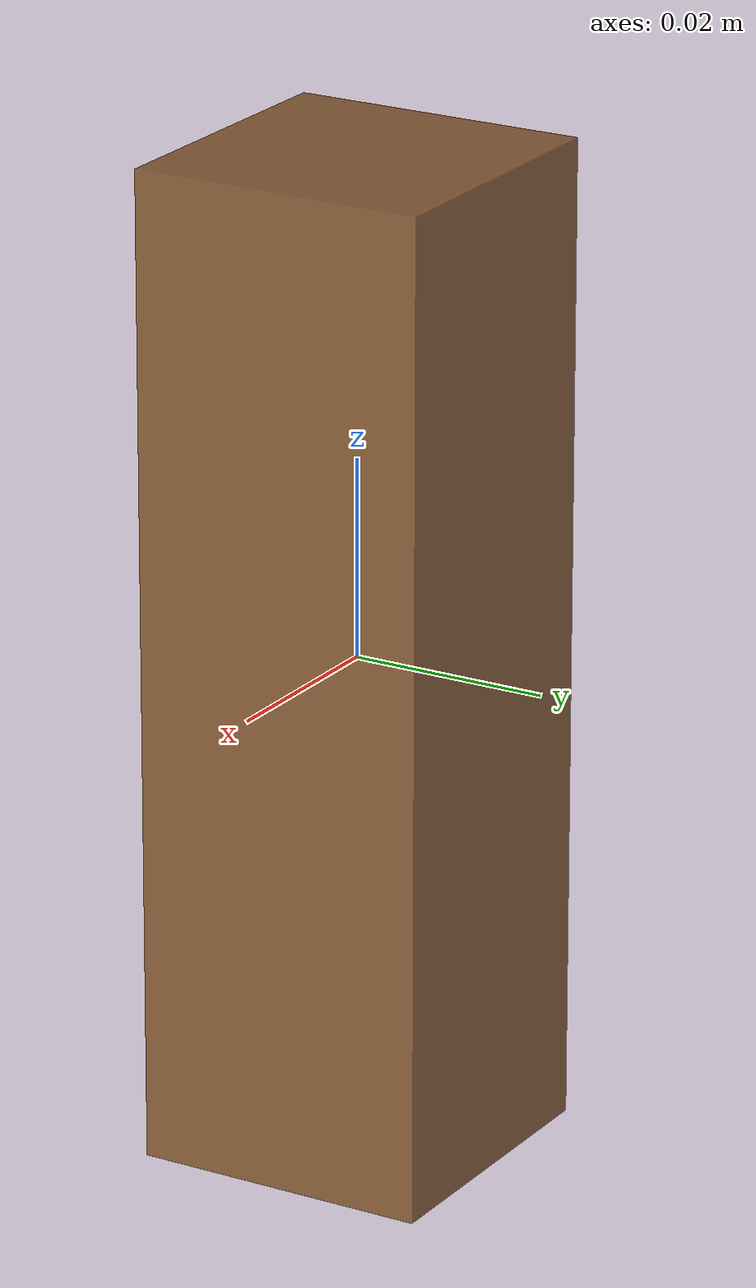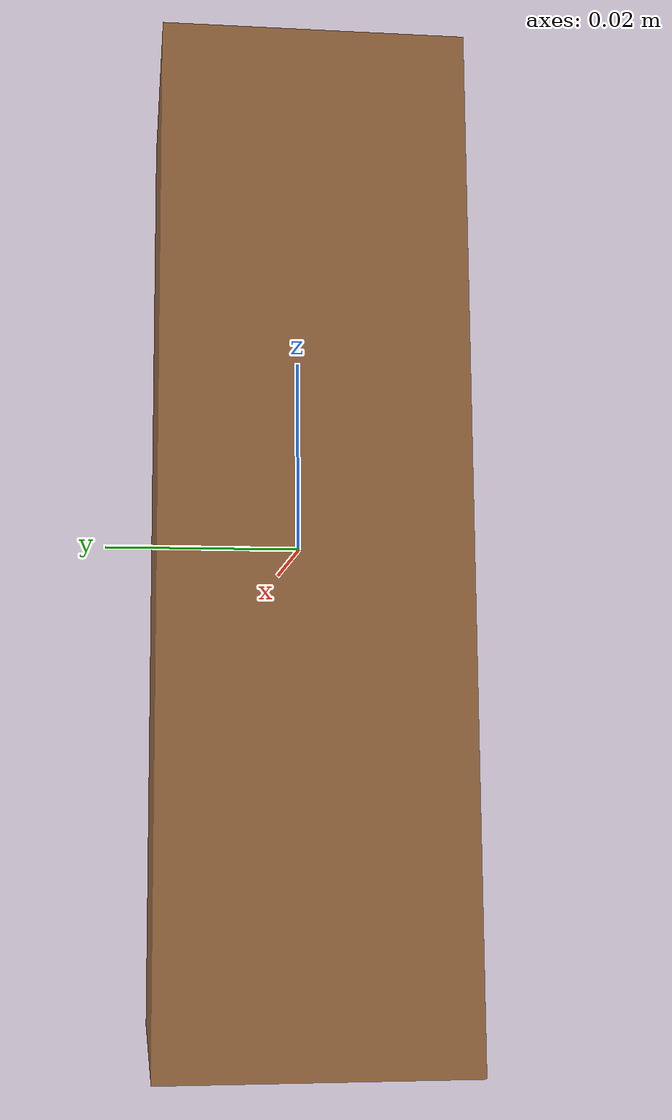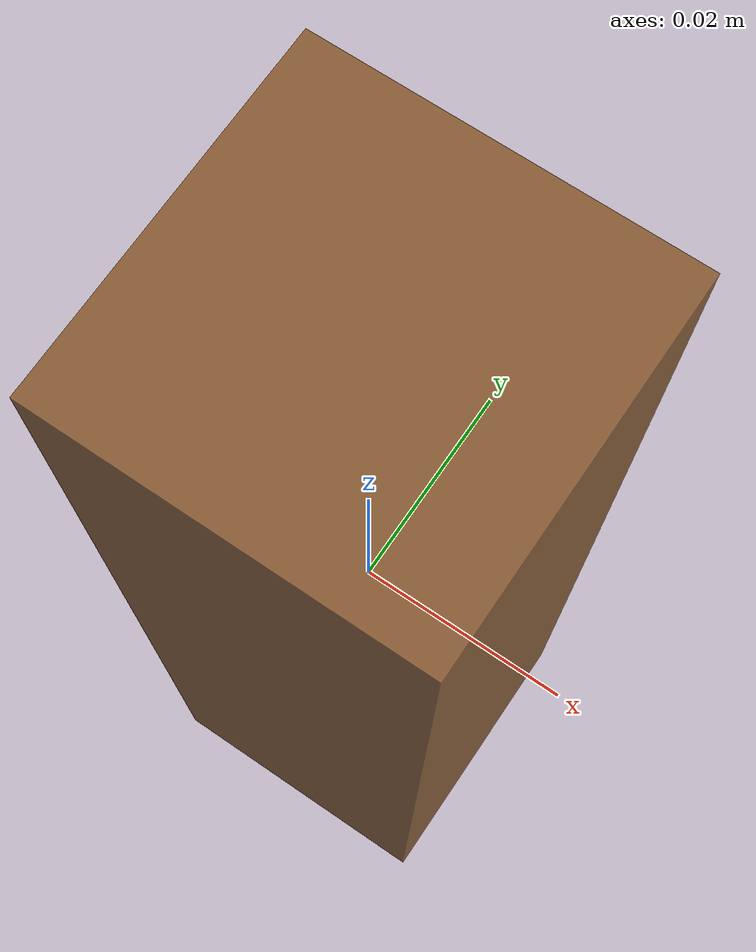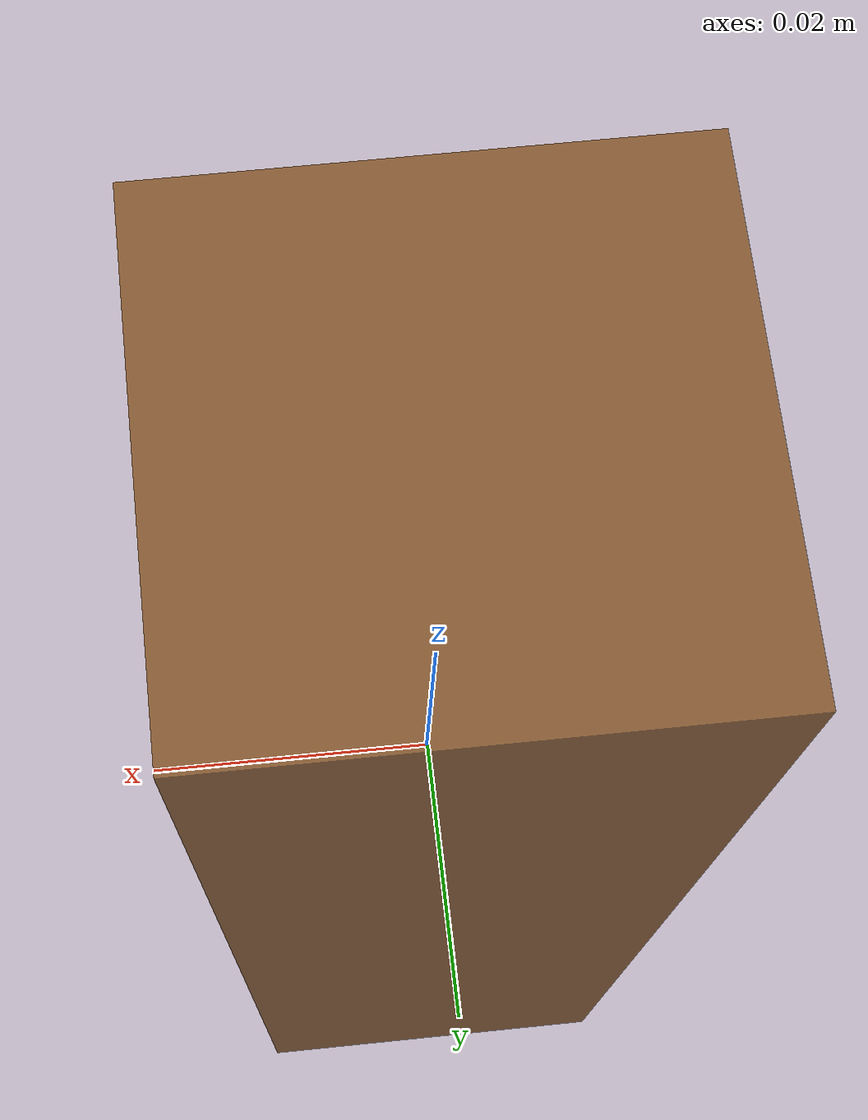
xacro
<?xml version="1.0"?>
<robot xmlns:xacro="http://www.ros.org/wiki/xacro" name="pusher">
<xacro:property name="m" value="1.0" />
<xacro:property name="l" value="0.03" />
<xacro:property name="w" value="0.03" />
<xacro:property name="h" value="0.1" />
<xacro:property name="Ih" value="${1/12*m*(w*w + l*l)}" />
<xacro:property name="Iw" value="${1/12*m*(h*h + l*l)}" />
<xacro:property name="Il" value="${1/12*m*(w*w + h*h)}" />

  <link name="base_link">
    <contact>
      <lateral_friction value="0.8"/>
      <spinning_friction value=".05"/>
      <rolling_friction value=".01"/>
    </contact>
    <inertial>
      <origin rpy="0 0 0" xyz="0 0 0"/>
      <mass value="${m}"/>
      <inertia ixx="${Il}" ixy="0" ixz="0" iyy="${Iw}" iyz="0" izz="${Ih}"/>
    </inertial>
    <visual>
      <origin rpy="0 0 0" xyz="0.0 0.0 0.0"/>
      <geometry>
        <box size="${l} ${w} ${h}"/>
      </geometry>
      <material name="blockmat">
        <color rgba="0.5 0.3 0.1 0.8"/>
      </material>
    </visual>
    <collision>
      <origin rpy="0 0 0" xyz="0.0 0.0 0.0"/>
      <geometry>
        <box size="${l} ${w} ${h}"/>
      </geometry>
    </collision>
 </link>

</robot>
